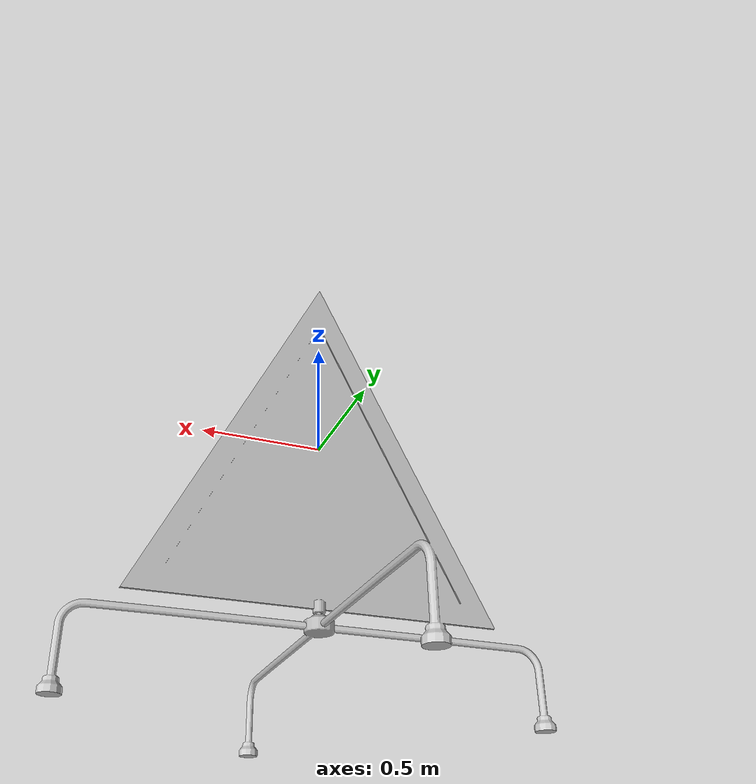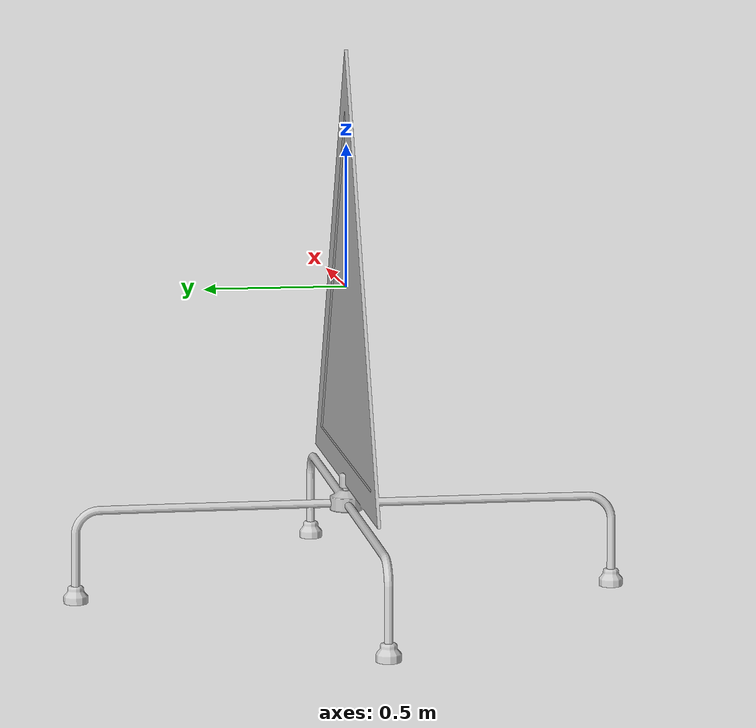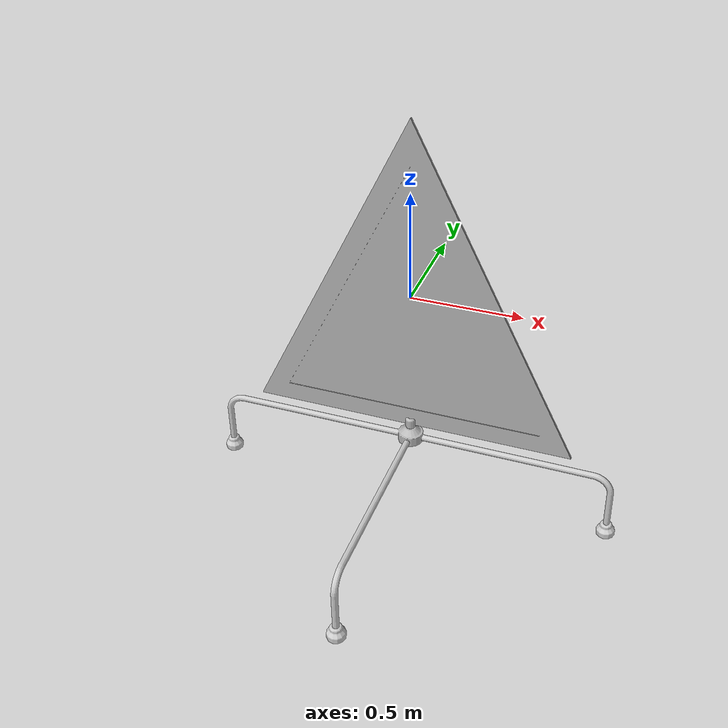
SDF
<?xml version="1.0" ?>
<sdf version="1.6">
  <model name="caution">
  <pose>0 0 0 0 0 0</pose>
  <static>true</static>
    <link name="caution">
      <pose>0 0 0 0 0 0</pose>
      <visual name="caution_visual">
        <geometry><mesh><uri>model://caution/meshes/caution.dae</uri></mesh></geometry>
        </visual>
      <collision name="caution_collision">
        <geometry><mesh><uri>model://caution/meshes/caution.dae</uri></mesh></geometry>
      </collision>
      </link>

  </model>
</sdf>
